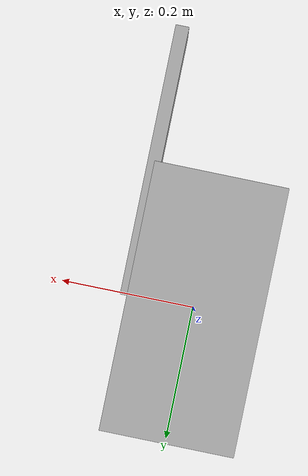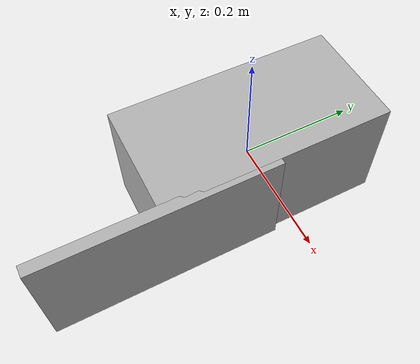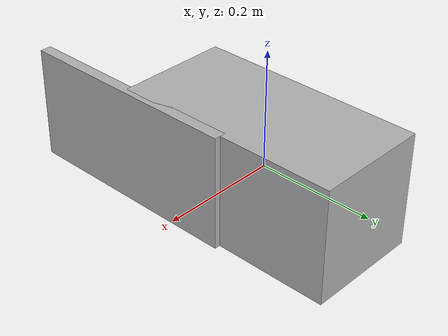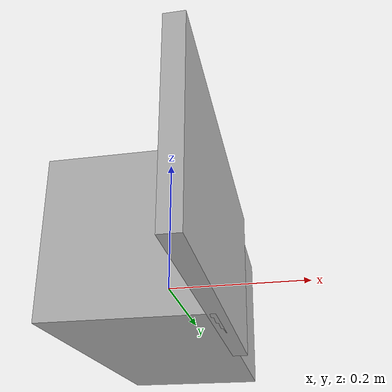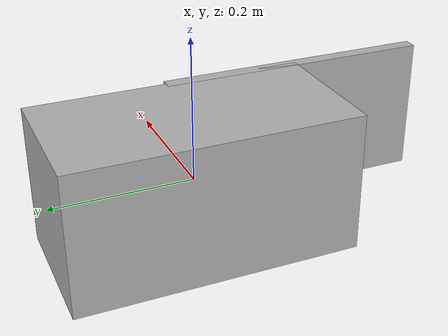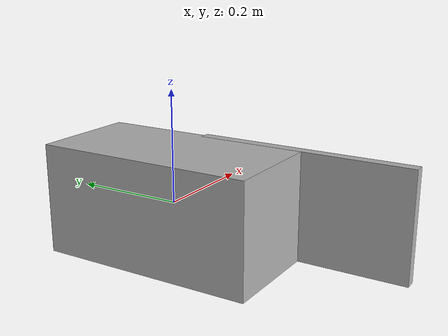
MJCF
<?xml version="1.0" encoding="utf-8"?>
<mujoco>
    <asset>
        <material name="cabinet_metal" rgba="0.7 0.7 0.7 1"/>
    </asset>

    <worldbody>
        <body>
            <body name="cabinet_main">
                <geom type="box" size="0.1 0.2 0.1" material="cabinet_metal"/>
            </body>
            <body name="door" pos="0.1 -0.2 0">
                <joint type="hinge" name="door_joint" axis="0 0 1" limited="true" range="-1.57 0"/>
                <geom type="box" size="0.01 0.2 0.1" material="cabinet_metal"/>
            </body>
        </body>
    </worldbody>
</mujoco>
